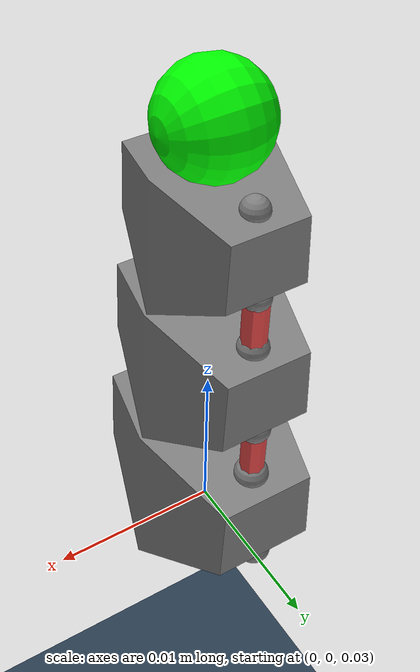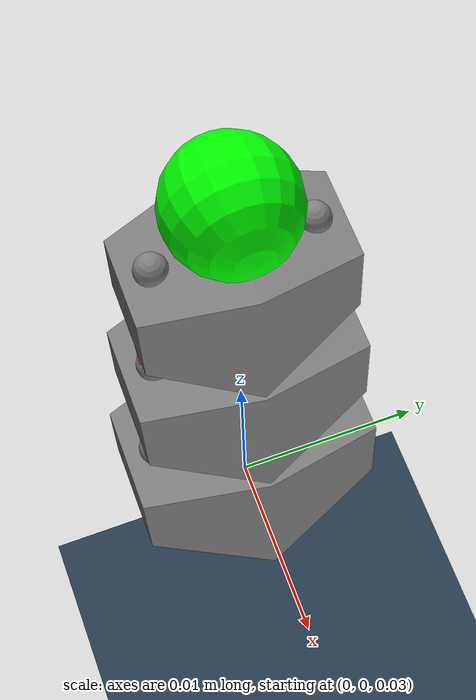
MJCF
<mujoco model="spiral_robot">
  <compiler angle="radian"/>
  <option gravity="0 0 0"/>
  <asset>
    <mesh name="baselink_1" file="baselink.stl" scale="0.001000000 0.001000000 0.001000000"/>
    <mesh name="baselink_2" file="baselink.stl" scale="0.000876002 0.000876002 0.000876002"/>
    <mesh name="baselink_3" file="baselink.stl" scale="0.000767380 0.000767380 0.000767380"/>
    <texture name="texplane" type="2d" builtin="checker" rgb1=".2 .3 .4" rgb2=".1 0.15 0.2" width="512" height="512" mark="cross" markrgb=".8 .8 .8"/>
    <material name="matplane" reflectance="0.3" texture="texplane" texrepeat="1 1" texuniform="true"/>
  </asset>
  <worldbody>
    <geom name="ground" type="plane" size="10 10 1" pos="0 0 0" quat="1 0 0 0" material="matplane" condim="1"/>
    <light pos="1 0.5 0.7" dir="-1 -0.5 -1" directional="true" castshadow="false" diffuse="1 1 1" specular="0.3 0.3 0.3"/>
    <body name="link1" pos="0 0 0.027339759">
      <geom type="mesh" mesh="baselink_1"/>
      <site name="s1_1" pos="0.000000000 0.005371852 0.003230964" size="0.001000 0.001000 0.001000"/>
      <site name="s1_2" pos="0.000000000 0.004630679 0.009360576" size="0.001000 0.001000 0.001000"/>
      <site name="s1_3" pos="0.000000000 -0.005371852 0.003230964" size="0.001000 0.001000 0.001000"/>
      <site name="s1_4" pos="0.000000000 -0.004630679 0.009360576" size="0.001000 0.001000 0.001000"/>
      <body name="link2" pos="0 0 0.010342720">
        <joint type="hinge" axis="1 0 0" range="-0.750491578 0.750491578" stiffness="0.010000" damping="0.010000"/>
        <geom type="mesh" mesh="baselink_2"/>
        <site name="s2_1" pos="0.000000000 0.004705754 0.002830331" size="0.000876 0.000876 0.000876"/>
        <site name="s2_2" pos="0.000000000 0.004056485 0.008199885" size="0.000876 0.000876 0.000876"/>
        <site name="s2_3" pos="0.000000000 -0.004705754 0.002830331" size="0.000876 0.000876 0.000876"/>
        <site name="s2_4" pos="0.000000000 -0.004056485 0.008199885" size="0.000876 0.000876 0.000876"/>
      <body name="link3" pos="0 0 0.009060245">
        <joint type="hinge" axis="1 0 0" range="-0.750491578 0.750491578" stiffness="0.007674" damping="0.008760"/>
        <geom type="mesh" mesh="baselink_3"/>
        <site name="s3_1" pos="0.000000000 0.004122251 0.002479377" size="0.000767 0.000767 0.000767"/>
        <site name="s3_2" pos="0.000000000 0.003553490 0.007183117" size="0.000767 0.000767 0.000767"/>
        <site name="s3_3" pos="0.000000000 -0.004122251 0.002479377" size="0.000767 0.000767 0.000767"/>
        <site name="s3_4" pos="0.000000000 -0.003553490 0.007183117" size="0.000767 0.000767 0.000767"/>
                <site name="marker_3"
          type="sphere"
          pos="0 0 0.01"
          euler="0 1.57079632679 0"
          size="0.003"
          rgba="0 1 0 1"/>
      </body>
      </body>
    </body>
  </worldbody>
  <tendon>
    <spatial name="tendon1" width="0.0007" frictionloss="0.1" rgba=".95 .3 .3 1" limited="true" range="0.010935904 0.068349399">
      <site site="s1_1"/>
      <site site="s1_2"/>
      <site site="s2_1"/>
      <site site="s2_2"/>
      <site site="s3_1"/>
      <site site="s3_2"/>
    </spatial>
    <spatial name="tendon2" width="0.0007" frictionloss="0.1" rgba=".95 .3 .3 1" limited="true" range="0.010935904 0.068349399">
      <site site="s1_3"/>
      <site site="s1_4"/>
      <site site="s2_3"/>
      <site site="s2_4"/>
      <site site="s3_3"/>
      <site site="s3_4"/>
    </spatial>
  </tendon>
   <actuator>
    <position name="act1" tendon="tendon1" kp="5.0" ctrllimited="true" ctrlrange="-1 0.1" lengthrange="0.185632848 1.160205301"/>
    <position name="act2" tendon="tendon2" kp="5.0" ctrllimited="true" ctrlrange="-1 0.1"  lengthrange="0.185632848 1.160205301" />
  </actuator>
</mujoco>
